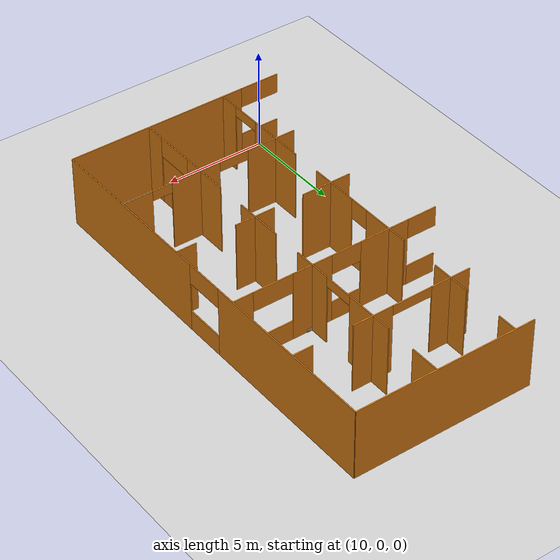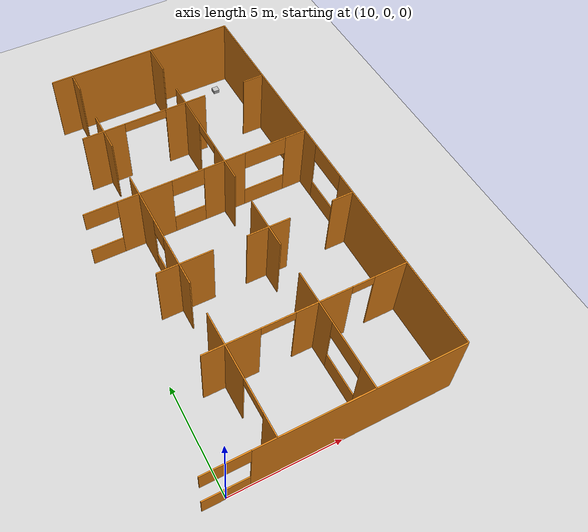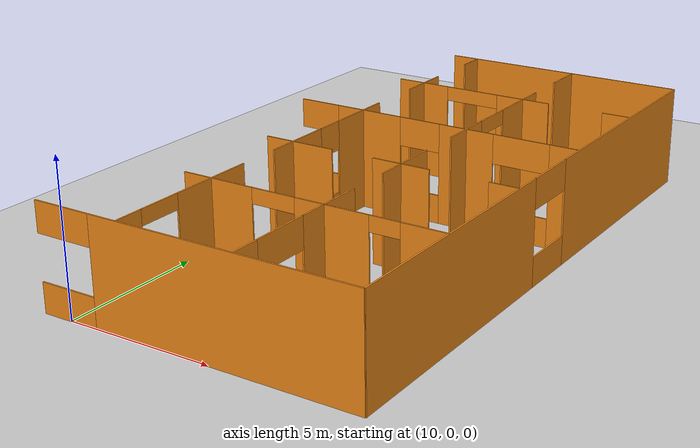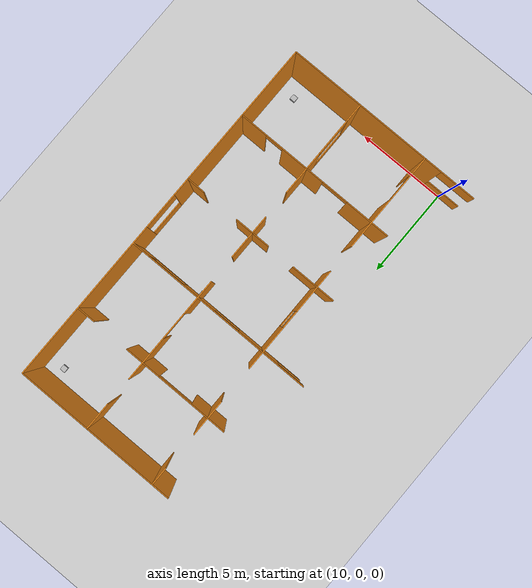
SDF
<sdf version="1.6">
 <world name="default">
  <include><uri>model://rirpc_box</uri><name>cube_4</name><pose>19.125 0.875 0 0 0 0</pose></include>
  <include><uri>model://rirpc_box</uri><name>cube_2</name><pose>16.125 11.875 0 0 0 0</pose></include>
  <include><uri>model://rirpc_box</uri><name>cube_0</name><pose>19.125 19.375 0 0 0 0</pose></include>
  <model name="window_11">
   <pose>10.25 12.0 1.75 0 0 -3.141592653589793</pose>
   <link name="top">
    <pose>0 0 1.25 0 0 0</pose>
    <inertial>
     <mass>1</mass>
     <inertia><ixx>0</ixx><ixy>0</ixy><ixz>0</ixz><iyy>0</iyy><iyz>0</iyz><izz>0</izz></inertia>
    </inertial>
    <collision name="collision"><geometry><box><size>1.5 0.05 1.0</size></box></geometry></collision>
    <visual name="visual">
     <geometry><box><size>1.5 0.05 1.0</size></box></geometry>
     <material>
      <script><name>Gazebo/Orange</name><uri>file://media/materials/scripts/gazebo.material</uri></script>
     </material>
    </visual>
   </link>
   <link name="bot">
    <pose>0 0 -1.25 0 0 0</pose>
    <inertial>
     <mass>1</mass>
     <inertia><ixx>0</ixx><ixy>0</ixy><ixz>0</ixz><iyy>0</iyy><iyz>0</iyz><izz>0</izz></inertia>
    </inertial>
    <collision name="collision"><geometry><box><size>1.5 0.05 1.0</size></box></geometry></collision>
    <visual name="visual">
     <geometry><box><size>1.5 0.05 1.0</size></box></geometry>
     <material>
      <script><name>Gazebo/Orange</name><uri>file://media/materials/scripts/gazebo.material</uri></script>
     </material>
    </visual>
   </link>
   <static>1</static>
  </model>
  <model name="window_10">
   <pose>18.0 12.0 1.75 0 0 -3.141592653589793</pose>
   <link name="top">
    <pose>0 0 1.25 0 0 0</pose>
    <inertial>
     <mass>1</mass>
     <inertia><ixx>0</ixx><ixy>0</ixy><ixz>0</ixz><iyy>0</iyy><iyz>0</iyz><izz>0</izz></inertia>
    </inertial>
    <collision name="collision"><geometry><box><size>2.0 0.05 1.0</size></box></geometry></collision>
    <visual name="visual">
     <geometry><box><size>2.0 0.05 1.0</size></box></geometry>
     <material>
      <script><name>Gazebo/Orange</name><uri>file://media/materials/scripts/gazebo.material</uri></script>
     </material>
    </visual>
   </link>
   <link name="bot">
    <pose>0 0 -1.25 0 0 0</pose>
    <inertial>
     <mass>1</mass>
     <inertia><ixx>0</ixx><ixy>0</ixy><ixz>0</ixz><iyy>0</iyy><iyz>0</iyz><izz>0</izz></inertia>
    </inertial>
    <collision name="collision"><geometry><box><size>2.0 0.05 1.0</size></box></geometry></collision>
    <visual name="visual">
     <geometry><box><size>2.0 0.05 1.0</size></box></geometry>
     <material>
      <script><name>Gazebo/Orange</name><uri>file://media/materials/scripts/gazebo.material</uri></script>
     </material>
    </visual>
   </link>
   <static>1</static>
  </model>
  <model name="window_9">
   <pose>14.25 12.0 1.75 0 0 -3.141592653589793</pose>
   <link name="top">
    <pose>0 0 1.25 0 0 0</pose>
    <inertial>
     <mass>1</mass>
     <inertia><ixx>0</ixx><ixy>0</ixy><ixz>0</ixz><iyy>0</iyy><iyz>0</iyz><izz>0</izz></inertia>
    </inertial>
    <collision name="collision"><geometry><box><size>1.5 0.05 1.0</size></box></geometry></collision>
    <visual name="visual">
     <geometry><box><size>1.5 0.05 1.0</size></box></geometry>
     <material>
      <script><name>Gazebo/Orange</name><uri>file://media/materials/scripts/gazebo.material</uri></script>
     </material>
    </visual>
   </link>
   <link name="bot">
    <pose>0 0 -1.25 0 0 0</pose>
    <inertial>
     <mass>1</mass>
     <inertia><ixx>0</ixx><ixy>0</ixy><ixz>0</ixz><iyy>0</iyy><iyz>0</iyz><izz>0</izz></inertia>
    </inertial>
    <collision name="collision"><geometry><box><size>1.5 0.05 1.0</size></box></geometry></collision>
    <visual name="visual">
     <geometry><box><size>1.5 0.05 1.0</size></box></geometry>
     <material>
      <script><name>Gazebo/Orange</name><uri>file://media/materials/scripts/gazebo.material</uri></script>
     </material>
    </visual>
   </link>
   <static>1</static>
  </model>
  <model name="window_8">
   <pose>16.0 2.0 1.75 0 0 1.5707963267948966</pose>
   <link name="top">
    <pose>0 0 1.25 0 0 0</pose>
    <inertial>
     <mass>1</mass>
     <inertia><ixx>0</ixx><ixy>0</ixy><ixz>0</ixz><iyy>0</iyy><iyz>0</iyz><izz>0</izz></inertia>
    </inertial>
    <collision name="collision"><geometry><box><size>2.0 0.05 1.0</size></box></geometry></collision>
    <visual name="visual">
     <geometry><box><size>2.0 0.05 1.0</size></box></geometry>
     <material>
      <script><name>Gazebo/Orange</name><uri>file://media/materials/scripts/gazebo.material</uri></script>
     </material>
    </visual>
   </link>
   <link name="bot">
    <pose>0 0 -1.25 0 0 0</pose>
    <inertial>
     <mass>1</mass>
     <inertia><ixx>0</ixx><ixy>0</ixy><ixz>0</ixz><iyy>0</iyy><iyz>0</iyz><izz>0</izz></inertia>
    </inertial>
    <collision name="collision"><geometry><box><size>2.0 0.05 1.0</size></box></geometry></collision>
    <visual name="visual">
     <geometry><box><size>2.0 0.05 1.0</size></box></geometry>
     <material>
      <script><name>Gazebo/Orange</name><uri>file://media/materials/scripts/gazebo.material</uri></script>
     </material>
    </visual>
   </link>
   <static>1</static>
  </model>
  <model name="window_7">
   <pose>12.0 10.0 1.75 0 0 1.5707963267948966</pose>
   <link name="top">
    <pose>0 0 1.25 0 0 0</pose>
    <inertial>
     <mass>1</mass>
     <inertia><ixx>0</ixx><ixy>0</ixy><ixz>0</ixz><iyy>0</iyy><iyz>0</iyz><izz>0</izz></inertia>
    </inertial>
    <collision name="collision"><geometry><box><size>1.0 0.05 1.0</size></box></geometry></collision>
    <visual name="visual">
     <geometry><box><size>1.0 0.05 1.0</size></box></geometry>
     <material>
      <script><name>Gazebo/Orange</name><uri>file://media/materials/scripts/gazebo.material</uri></script>
     </material>
    </visual>
   </link>
   <link name="bot">
    <pose>0 0 -1.25 0 0 0</pose>
    <inertial>
     <mass>1</mass>
     <inertia><ixx>0</ixx><ixy>0</ixy><ixz>0</ixz><iyy>0</iyy><iyz>0</iyz><izz>0</izz></inertia>
    </inertial>
    <collision name="collision"><geometry><box><size>1.0 0.05 1.0</size></box></geometry></collision>
    <visual name="visual">
     <geometry><box><size>1.0 0.05 1.0</size></box></geometry>
     <material>
      <script><name>Gazebo/Orange</name><uri>file://media/materials/scripts/gazebo.material</uri></script>
     </material>
    </visual>
   </link>
   <static>1</static>
  </model>
  <model name="window_2">
   <pose>10.0 0.0 1.75 0 0 -0.0</pose>
   <link name="top">
    <pose>0 0 1.25 0 0 0</pose>
    <inertial>
     <mass>1</mass>
     <inertia><ixx>0</ixx><ixy>0</ixy><ixz>0</ixz><iyy>0</iyy><iyz>0</iyz><izz>0</izz></inertia>
    </inertial>
    <collision name="collision"><geometry><box><size>2.0 0.05 1.0</size></box></geometry></collision>
    <visual name="visual">
     <geometry><box><size>2.0 0.05 1.0</size></box></geometry>
     <material>
      <script><name>Gazebo/Orange</name><uri>file://media/materials/scripts/gazebo.material</uri></script>
     </material>
    </visual>
   </link>
   <link name="bot">
    <pose>0 0 -1.25 0 0 0</pose>
    <inertial>
     <mass>1</mass>
     <inertia><ixx>0</ixx><ixy>0</ixy><ixz>0</ixz><iyy>0</iyy><iyz>0</iyz><izz>0</izz></inertia>
    </inertial>
    <collision name="collision"><geometry><box><size>2.0 0.05 1.0</size></box></geometry></collision>
    <visual name="visual">
     <geometry><box><size>2.0 0.05 1.0</size></box></geometry>
     <material>
      <script><name>Gazebo/Orange</name><uri>file://media/materials/scripts/gazebo.material</uri></script>
     </material>
    </visual>
   </link>
   <static>1</static>
  </model>
  <model name="window_1">
   <pose>20.0 10.0 1.75 0 0 1.5707963267948966</pose>
   <link name="top">
    <pose>0 0 1.25 0 0 0</pose>
    <inertial>
     <mass>1</mass>
     <inertia><ixx>0</ixx><ixy>0</ixy><ixz>0</ixz><iyy>0</iyy><iyz>0</iyz><izz>0</izz></inertia>
    </inertial>
    <collision name="collision"><geometry><box><size>2.0 0.05 1.0</size></box></geometry></collision>
    <visual name="visual">
     <geometry><box><size>2.0 0.05 1.0</size></box></geometry>
     <material>
      <script><name>Gazebo/Orange</name><uri>file://media/materials/scripts/gazebo.material</uri></script>
     </material>
    </visual>
   </link>
   <link name="bot">
    <pose>0 0 -1.25 0 0 0</pose>
    <inertial>
     <mass>1</mass>
     <inertia><ixx>0</ixx><ixy>0</ixy><ixz>0</ixz><iyy>0</iyy><iyz>0</iyz><izz>0</izz></inertia>
    </inertial>
    <collision name="collision"><geometry><box><size>2.0 0.05 1.0</size></box></geometry></collision>
    <visual name="visual">
     <geometry><box><size>2.0 0.05 1.0</size></box></geometry>
     <material>
      <script><name>Gazebo/Orange</name><uri>file://media/materials/scripts/gazebo.material</uri></script>
     </material>
    </visual>
   </link>
   <static>1</static>
  </model>
  <model name="box_67">
   <pose>18.0 4.0 3.25 0 0 -3.141592653589793</pose>
   <link name="link">
    <inertial>
     <mass>1</mass>
     <inertia><ixx>0</ixx><ixy>0</ixy><ixz>0</ixz><iyy>0</iyy><iyz>0</iyz><izz>0</izz></inertia>
    </inertial>
    <collision name="collision"><geometry><box><size>1.0 0.05 0.5</size></box></geometry></collision>
    <visual name="visual">
     <geometry><box><size>1.0 0.05 0.5</size></box></geometry>
     <material>
      <script><name>Gazebo/Orange</name><uri>file://media/materials/scripts/gazebo.material</uri></script>
     </material>
    </visual>
   </link>
   <static>1</static>
  </model>
  <model name="box_64">
   <pose>12.0 1.75 3.25 0 0 1.5707963267948966</pose>
   <link name="link">
    <inertial>
     <mass>1</mass>
     <inertia><ixx>0</ixx><ixy>0</ixy><ixz>0</ixz><iyy>0</iyy><iyz>0</iyz><izz>0</izz></inertia>
    </inertial>
    <collision name="collision"><geometry><box><size>1.5 0.05 0.5</size></box></geometry></collision>
    <visual name="visual">
     <geometry><box><size>1.5 0.05 0.5</size></box></geometry>
     <material>
      <script><name>Gazebo/Orange</name><uri>file://media/materials/scripts/gazebo.material</uri></script>
     </material>
    </visual>
   </link>
   <static>1</static>
  </model>
  <model name="box_63">
   <pose>14.25 4.0 3.25 0 0 -3.141592653589793</pose>
   <link name="link">
    <inertial>
     <mass>1</mass>
     <inertia><ixx>0</ixx><ixy>0</ixy><ixz>0</ixz><iyy>0</iyy><iyz>0</iyz><izz>0</izz></inertia>
    </inertial>
    <collision name="collision"><geometry><box><size>1.5 0.05 0.5</size></box></geometry></collision>
    <visual name="visual">
     <geometry><box><size>1.5 0.05 0.5</size></box></geometry>
     <material>
      <script><name>Gazebo/Orange</name><uri>file://media/materials/scripts/gazebo.material</uri></script>
     </material>
    </visual>
   </link>
   <static>1</static>
  </model>
  <model name="box_62">
   <pose>16.0 13.75 3.25 0 0 1.5707963267948966</pose>
   <link name="link">
    <inertial>
     <mass>1</mass>
     <inertia><ixx>0</ixx><ixy>0</ixy><ixz>0</ixz><iyy>0</iyy><iyz>0</iyz><izz>0</izz></inertia>
    </inertial>
    <collision name="collision"><geometry><box><size>1.5 0.05 0.5</size></box></geometry></collision>
    <visual name="visual">
     <geometry><box><size>1.5 0.05 0.5</size></box></geometry>
     <material>
      <script><name>Gazebo/Orange</name><uri>file://media/materials/scripts/gazebo.material</uri></script>
     </material>
    </visual>
   </link>
   <static>1</static>
  </model>
  <model name="box_61">
   <pose>14.0 16.0 3.25 0 0 -3.141592653589793</pose>
   <link name="link">
    <inertial>
     <mass>1</mass>
     <inertia><ixx>0</ixx><ixy>0</ixy><ixz>0</ixz><iyy>0</iyy><iyz>0</iyz><izz>0</izz></inertia>
    </inertial>
    <collision name="collision"><geometry><box><size>2.0 0.05 0.5</size></box></geometry></collision>
    <visual name="visual">
     <geometry><box><size>2.0 0.05 0.5</size></box></geometry>
     <material>
      <script><name>Gazebo/Orange</name><uri>file://media/materials/scripts/gazebo.material</uri></script>
     </material>
    </visual>
   </link>
   <static>1</static>
  </model>
  <model name="box_56">
   <pose>16.0 12.0 1.75 0 0 -3.141592653589793</pose>
   <link name="link">
    <inertial>
     <mass>1</mass>
     <inertia><ixx>0</ixx><ixy>0</ixy><ixz>0</ixz><iyy>0</iyy><iyz>0</iyz><izz>0</izz></inertia>
    </inertial>
    <collision name="collision"><geometry><box><size>2.0 0.05 3.5</size></box></geometry></collision>
    <visual name="visual">
     <geometry><box><size>2.0 0.05 3.5</size></box></geometry>
     <material>
      <script><name>Gazebo/Orange</name><uri>file://media/materials/scripts/gazebo.material</uri></script>
     </material>
    </visual>
   </link>
   <static>1</static>
  </model>
  <model name="box_49">
   <pose>19.25 4.0 1.75 0 0 -3.141592653589793</pose>
   <link name="link">
    <inertial>
     <mass>1</mass>
     <inertia><ixx>0</ixx><ixy>0</ixy><ixz>0</ixz><iyy>0</iyy><iyz>0</iyz><izz>0</izz></inertia>
    </inertial>
    <collision name="collision"><geometry><box><size>1.5 0.05 3.5</size></box></geometry></collision>
    <visual name="visual">
     <geometry><box><size>1.5 0.05 3.5</size></box></geometry>
     <material>
      <script><name>Gazebo/Orange</name><uri>file://media/materials/scripts/gazebo.material</uri></script>
     </material>
    </visual>
   </link>
   <static>1</static>
  </model>
  <model name="box_48">
   <pose>19.5 8.0 1.75 0 0 -3.141592653589793</pose>
   <link name="link">
    <inertial>
     <mass>1</mass>
     <inertia><ixx>0</ixx><ixy>0</ixy><ixz>0</ixz><iyy>0</iyy><iyz>0</iyz><izz>0</izz></inertia>
    </inertial>
    <collision name="collision"><geometry><box><size>1.0 0.05 3.5</size></box></geometry></collision>
    <visual name="visual">
     <geometry><box><size>1.0 0.05 3.5</size></box></geometry>
     <material>
      <script><name>Gazebo/Orange</name><uri>file://media/materials/scripts/gazebo.material</uri></script>
     </material>
    </visual>
   </link>
   <static>1</static>
  </model>
  <model name="box_47">
   <pose>19.5 12.0 1.75 0 0 -3.141592653589793</pose>
   <link name="link">
    <inertial>
     <mass>1</mass>
     <inertia><ixx>0</ixx><ixy>0</ixy><ixz>0</ixz><iyy>0</iyy><iyz>0</iyz><izz>0</izz></inertia>
    </inertial>
    <collision name="collision"><geometry><box><size>1.0 0.05 3.5</size></box></geometry></collision>
    <visual name="visual">
     <geometry><box><size>1.0 0.05 3.5</size></box></geometry>
     <material>
      <script><name>Gazebo/Orange</name><uri>file://media/materials/scripts/gazebo.material</uri></script>
     </material>
    </visual>
   </link>
   <static>1</static>
  </model>
  <model name="box_46">
   <pose>16.0 8.25 1.75 0 0 1.5707963267948966</pose>
   <link name="link">
    <inertial>
     <mass>1</mass>
     <inertia><ixx>0</ixx><ixy>0</ixy><ixz>0</ixz><iyy>0</iyy><iyz>0</iyz><izz>0</izz></inertia>
    </inertial>
    <collision name="collision"><geometry><box><size>2.5 0.05 3.5</size></box></geometry></collision>
    <visual name="visual">
     <geometry><box><size>2.5 0.05 3.5</size></box></geometry>
     <material>
      <script><name>Gazebo/Orange</name><uri>file://media/materials/scripts/gazebo.material</uri></script>
     </material>
    </visual>
   </link>
   <static>1</static>
  </model>
  <model name="box_45">
   <pose>16.0 8.0 1.75 0 0 -3.141592653589793</pose>
   <link name="link">
    <inertial>
     <mass>1</mass>
     <inertia><ixx>0</ixx><ixy>0</ixy><ixz>0</ixz><iyy>0</iyy><iyz>0</iyz><izz>0</izz></inertia>
    </inertial>
    <collision name="collision"><geometry><box><size>2.0 0.05 3.5</size></box></geometry></collision>
    <visual name="visual">
     <geometry><box><size>2.0 0.05 3.5</size></box></geometry>
     <material>
      <script><name>Gazebo/Orange</name><uri>file://media/materials/scripts/gazebo.material</uri></script>
     </material>
    </visual>
   </link>
   <static>1</static>
  </model>
  <model name="box_44">
   <pose>16.0 4.25 1.75 0 0 1.5707963267948966</pose>
   <link name="link">
    <inertial>
     <mass>1</mass>
     <inertia><ixx>0</ixx><ixy>0</ixy><ixz>0</ixz><iyy>0</iyy><iyz>0</iyz><izz>0</izz></inertia>
    </inertial>
    <collision name="collision"><geometry><box><size>2.5 0.05 3.5</size></box></geometry></collision>
    <visual name="visual">
     <geometry><box><size>2.5 0.05 3.5</size></box></geometry>
     <material>
      <script><name>Gazebo/Orange</name><uri>file://media/materials/scripts/gazebo.material</uri></script>
     </material>
    </visual>
   </link>
   <static>1</static>
  </model>
  <model name="box_43">
   <pose>16.25 4.0 1.75 0 0 -3.141592653589793</pose>
   <link name="link">
    <inertial>
     <mass>1</mass>
     <inertia><ixx>0</ixx><ixy>0</ixy><ixz>0</ixz><iyy>0</iyy><iyz>0</iyz><izz>0</izz></inertia>
    </inertial>
    <collision name="collision"><geometry><box><size>2.5 0.05 3.5</size></box></geometry></collision>
    <visual name="visual">
     <geometry><box><size>2.5 0.05 3.5</size></box></geometry>
     <material>
      <script><name>Gazebo/Orange</name><uri>file://media/materials/scripts/gazebo.material</uri></script>
     </material>
    </visual>
   </link>
   <static>1</static>
  </model>
  <model name="box_42">
   <pose>16.0 0.5 1.75 0 0 1.5707963267948966</pose>
   <link name="link">
    <inertial>
     <mass>1</mass>
     <inertia><ixx>0</ixx><ixy>0</ixy><ixz>0</ixz><iyy>0</iyy><iyz>0</iyz><izz>0</izz></inertia>
    </inertial>
    <collision name="collision"><geometry><box><size>1.0 0.05 3.5</size></box></geometry></collision>
    <visual name="visual">
     <geometry><box><size>1.0 0.05 3.5</size></box></geometry>
     <material>
      <script><name>Gazebo/Orange</name><uri>file://media/materials/scripts/gazebo.material</uri></script>
     </material>
    </visual>
   </link>
   <static>1</static>
  </model>
  <model name="box_41">
   <pose>12.0 0.5 1.75 0 0 1.5707963267948966</pose>
   <link name="link">
    <inertial>
     <mass>1</mass>
     <inertia><ixx>0</ixx><ixy>0</ixy><ixz>0</ixz><iyy>0</iyy><iyz>0</iyz><izz>0</izz></inertia>
    </inertial>
    <collision name="collision"><geometry><box><size>1.0 0.05 3.5</size></box></geometry></collision>
    <visual name="visual">
     <geometry><box><size>1.0 0.05 3.5</size></box></geometry>
     <material>
      <script><name>Gazebo/Orange</name><uri>file://media/materials/scripts/gazebo.material</uri></script>
     </material>
    </visual>
   </link>
   <static>1</static>
  </model>
  <model name="box_30">
   <pose>12.0 4.0 1.75 0 0 1.5707963267948966</pose>
   <link name="link">
    <inertial>
     <mass>1</mass>
     <inertia><ixx>0</ixx><ixy>0</ixy><ixz>0</ixz><iyy>0</iyy><iyz>0</iyz><izz>0</izz></inertia>
    </inertial>
    <collision name="collision"><geometry><box><size>3.0 0.05 3.5</size></box></geometry></collision>
    <visual name="visual">
     <geometry><box><size>3.0 0.05 3.5</size></box></geometry>
     <material>
      <script><name>Gazebo/Orange</name><uri>file://media/materials/scripts/gazebo.material</uri></script>
     </material>
    </visual>
   </link>
   <static>1</static>
  </model>
  <model name="box_29">
   <pose>12.25 4.0 1.75 0 0 -3.141592653589793</pose>
   <link name="link">
    <inertial>
     <mass>1</mass>
     <inertia><ixx>0</ixx><ixy>0</ixy><ixz>0</ixz><iyy>0</iyy><iyz>0</iyz><izz>0</izz></inertia>
    </inertial>
    <collision name="collision"><geometry><box><size>2.5 0.05 3.5</size></box></geometry></collision>
    <visual name="visual">
     <geometry><box><size>2.5 0.05 3.5</size></box></geometry>
     <material>
      <script><name>Gazebo/Orange</name><uri>file://media/materials/scripts/gazebo.material</uri></script>
     </material>
    </visual>
   </link>
   <static>1</static>
  </model>
  <model name="box_28">
   <pose>12.25 8.0 1.75 0 0 -3.141592653589793</pose>
   <link name="link">
    <inertial>
     <mass>1</mass>
     <inertia><ixx>0</ixx><ixy>0</ixy><ixz>0</ixz><iyy>0</iyy><iyz>0</iyz><izz>0</izz></inertia>
    </inertial>
    <collision name="collision"><geometry><box><size>2.5 0.05 3.5</size></box></geometry></collision>
    <visual name="visual">
     <geometry><box><size>2.5 0.05 3.5</size></box></geometry>
     <material>
      <script><name>Gazebo/Orange</name><uri>file://media/materials/scripts/gazebo.material</uri></script>
     </material>
    </visual>
   </link>
   <static>1</static>
  </model>
  <model name="box_27">
   <pose>12.0 8.25 1.75 0 0 1.5707963267948966</pose>
   <link name="link">
    <inertial>
     <mass>1</mass>
     <inertia><ixx>0</ixx><ixy>0</ixy><ixz>0</ixz><iyy>0</iyy><iyz>0</iyz><izz>0</izz></inertia>
    </inertial>
    <collision name="collision"><geometry><box><size>2.5 0.05 3.5</size></box></geometry></collision>
    <visual name="visual">
     <geometry><box><size>2.5 0.05 3.5</size></box></geometry>
     <material>
      <script><name>Gazebo/Orange</name><uri>file://media/materials/scripts/gazebo.material</uri></script>
     </material>
    </visual>
   </link>
   <static>1</static>
  </model>
  <model name="box_23">
   <pose>12.0 16.0 1.75 0 0 -3.141592653589793</pose>
   <link name="link">
    <inertial>
     <mass>1</mass>
     <inertia><ixx>0</ixx><ixy>0</ixy><ixz>0</ixz><iyy>0</iyy><iyz>0</iyz><izz>0</izz></inertia>
    </inertial>
    <collision name="collision"><geometry><box><size>2.0 0.05 3.5</size></box></geometry></collision>
    <visual name="visual">
     <geometry><box><size>2.0 0.05 3.5</size></box></geometry>
     <material>
      <script><name>Gazebo/Orange</name><uri>file://media/materials/scripts/gazebo.material</uri></script>
     </material>
    </visual>
   </link>
   <static>1</static>
  </model>
  <model name="box_22">
   <pose>12.25 12.0 1.75 0 0 -3.141592653589793</pose>
   <link name="link">
    <inertial>
     <mass>1</mass>
     <inertia><ixx>0</ixx><ixy>0</ixy><ixz>0</ixz><iyy>0</iyy><iyz>0</iyz><izz>0</izz></inertia>
    </inertial>
    <collision name="collision"><geometry><box><size>2.5 0.05 3.5</size></box></geometry></collision>
    <visual name="visual">
     <geometry><box><size>2.5 0.05 3.5</size></box></geometry>
     <material>
      <script><name>Gazebo/Orange</name><uri>file://media/materials/scripts/gazebo.material</uri></script>
     </material>
    </visual>
   </link>
   <static>1</static>
  </model>
  <model name="box_21">
   <pose>16.0 12.0 1.75 0 0 1.5707963267948966</pose>
   <link name="link">
    <inertial>
     <mass>1</mass>
     <inertia><ixx>0</ixx><ixy>0</ixy><ixz>0</ixz><iyy>0</iyy><iyz>0</iyz><izz>0</izz></inertia>
    </inertial>
    <collision name="collision"><geometry><box><size>2.0 0.05 3.5</size></box></geometry></collision>
    <visual name="visual">
     <geometry><box><size>2.0 0.05 3.5</size></box></geometry>
     <material>
      <script><name>Gazebo/Orange</name><uri>file://media/materials/scripts/gazebo.material</uri></script>
     </material>
    </visual>
   </link>
   <static>1</static>
  </model>
  <model name="box_20">
   <pose>16.0 15.75 1.75 0 0 1.5707963267948966</pose>
   <link name="link">
    <inertial>
     <mass>1</mass>
     <inertia><ixx>0</ixx><ixy>0</ixy><ixz>0</ixz><iyy>0</iyy><iyz>0</iyz><izz>0</izz></inertia>
    </inertial>
    <collision name="collision"><geometry><box><size>2.5 0.05 3.5</size></box></geometry></collision>
    <visual name="visual">
     <geometry><box><size>2.5 0.05 3.5</size></box></geometry>
     <material>
      <script><name>Gazebo/Orange</name><uri>file://media/materials/scripts/gazebo.material</uri></script>
     </material>
    </visual>
   </link>
   <static>1</static>
  </model>
  <model name="box_19">
   <pose>16.0 16.0 1.75 0 0 -3.141592653589793</pose>
   <link name="link">
    <inertial>
     <mass>1</mass>
     <inertia><ixx>0</ixx><ixy>0</ixy><ixz>0</ixz><iyy>0</iyy><iyz>0</iyz><izz>0</izz></inertia>
    </inertial>
    <collision name="collision"><geometry><box><size>2.0 0.05 3.5</size></box></geometry></collision>
    <visual name="visual">
     <geometry><box><size>2.0 0.05 3.5</size></box></geometry>
     <material>
      <script><name>Gazebo/Orange</name><uri>file://media/materials/scripts/gazebo.material</uri></script>
     </material>
    </visual>
   </link>
   <static>1</static>
  </model>
  <model name="box_18">
   <pose>19.5 16.0 1.75 0 0 -0.0</pose>
   <link name="link">
    <inertial>
     <mass>1</mass>
     <inertia><ixx>0</ixx><ixy>0</ixy><ixz>0</ixz><iyy>0</iyy><iyz>0</iyz><izz>0</izz></inertia>
    </inertial>
    <collision name="collision"><geometry><box><size>1.0 0.05 3.5</size></box></geometry></collision>
    <visual name="visual">
     <geometry><box><size>1.0 0.05 3.5</size></box></geometry>
     <material>
      <script><name>Gazebo/Orange</name><uri>file://media/materials/scripts/gazebo.material</uri></script>
     </material>
    </visual>
   </link>
   <static>1</static>
  </model>
  <model name="box_17">
   <pose>16.0 19.25 1.75 0 0 1.5707963267948966</pose>
   <link name="link">
    <inertial>
     <mass>1</mass>
     <inertia><ixx>0</ixx><ixy>0</ixy><ixz>0</ixz><iyy>0</iyy><iyz>0</iyz><izz>0</izz></inertia>
    </inertial>
    <collision name="collision"><geometry><box><size>1.5 0.05 3.5</size></box></geometry></collision>
    <visual name="visual">
     <geometry><box><size>1.5 0.05 3.5</size></box></geometry>
     <material>
      <script><name>Gazebo/Orange</name><uri>file://media/materials/scripts/gazebo.material</uri></script>
     </material>
    </visual>
   </link>
   <static>1</static>
  </model>
  <model name="box_15">
   <pose>12.0 19.5 1.75 0 0 1.5707963267948966</pose>
   <link name="link">
    <inertial>
     <mass>1</mass>
     <inertia><ixx>0</ixx><ixy>0</ixy><ixz>0</ixz><iyy>0</iyy><iyz>0</iyz><izz>0</izz></inertia>
    </inertial>
    <collision name="collision"><geometry><box><size>1.0 0.05 3.5</size></box></geometry></collision>
    <visual name="visual">
     <geometry><box><size>1.0 0.05 3.5</size></box></geometry>
     <material>
      <script><name>Gazebo/Orange</name><uri>file://media/materials/scripts/gazebo.material</uri></script>
     </material>
    </visual>
   </link>
   <static>1</static>
  </model>
  <model name="box_14">
   <pose>12.0 16.0 1.75 0 0 -1.5707963267948966</pose>
   <link name="link">
    <inertial>
     <mass>1</mass>
     <inertia><ixx>0</ixx><ixy>0</ixy><ixz>0</ixz><iyy>0</iyy><iyz>0</iyz><izz>0</izz></inertia>
    </inertial>
    <collision name="collision"><geometry><box><size>2.0 0.05 3.5</size></box></geometry></collision>
    <visual name="visual">
     <geometry><box><size>2.0 0.05 3.5</size></box></geometry>
     <material>
      <script><name>Gazebo/Orange</name><uri>file://media/materials/scripts/gazebo.material</uri></script>
     </material>
    </visual>
   </link>
   <static>1</static>
  </model>
  <model name="box_13">
   <pose>12.0 11.75 1.75 0 0 -1.5707963267948966</pose>
   <link name="link">
    <inertial>
     <mass>1</mass>
     <inertia><ixx>0</ixx><ixy>0</ixy><ixz>0</ixz><iyy>0</iyy><iyz>0</iyz><izz>0</izz></inertia>
    </inertial>
    <collision name="collision"><geometry><box><size>2.5 0.05 3.5</size></box></geometry></collision>
    <visual name="visual">
     <geometry><box><size>2.5 0.05 3.5</size></box></geometry>
     <material>
      <script><name>Gazebo/Orange</name><uri>file://media/materials/scripts/gazebo.material</uri></script>
     </material>
    </visual>
   </link>
   <static>1</static>
  </model>
  <model name="box_8">
   <pose>20.0 15.5 1.75 0 0 1.5707963267948966</pose>
   <link name="link">
    <inertial>
     <mass>1</mass>
     <inertia><ixx>0</ixx><ixy>0</ixy><ixz>0</ixz><iyy>0</iyy><iyz>0</iyz><izz>0</izz></inertia>
    </inertial>
    <collision name="collision"><geometry><box><size>9.0 0.05 3.5</size></box></geometry></collision>
    <visual name="visual">
     <geometry><box><size>9.0 0.05 3.5</size></box></geometry>
     <material>
      <script><name>Gazebo/Orange</name><uri>file://media/materials/scripts/gazebo.material</uri></script>
     </material>
    </visual>
   </link>
   <static>1</static>
  </model>
  <model name="box_7">
   <pose>15.5 20.0 1.75 0 0 -0.0</pose>
   <link name="link">
    <inertial>
     <mass>1</mass>
     <inertia><ixx>0</ixx><ixy>0</ixy><ixz>0</ixz><iyy>0</iyy><iyz>0</iyz><izz>0</izz></inertia>
    </inertial>
    <collision name="collision"><geometry><box><size>9.0 0.05 3.5</size></box></geometry></collision>
    <visual name="visual">
     <geometry><box><size>9.0 0.05 3.5</size></box></geometry>
     <material>
      <script><name>Gazebo/Orange</name><uri>file://media/materials/scripts/gazebo.material</uri></script>
     </material>
    </visual>
   </link>
   <static>1</static>
  </model>
  <model name="box_5">
   <pose>20.0 4.5 1.75 0 0 -1.5707963267948966</pose>
   <link name="link">
    <inertial>
     <mass>1</mass>
     <inertia><ixx>0</ixx><ixy>0</ixy><ixz>0</ixz><iyy>0</iyy><iyz>0</iyz><izz>0</izz></inertia>
    </inertial>
    <collision name="collision"><geometry><box><size>9.0 0.05 3.5</size></box></geometry></collision>
    <visual name="visual">
     <geometry><box><size>9.0 0.05 3.5</size></box></geometry>
     <material>
      <script><name>Gazebo/Orange</name><uri>file://media/materials/scripts/gazebo.material</uri></script>
     </material>
    </visual>
   </link>
   <static>1</static>
  </model>
  <model name="box_4">
   <pose>15.5 0.0 1.75 0 0 -0.0</pose>
   <link name="link">
    <inertial>
     <mass>1</mass>
     <inertia><ixx>0</ixx><ixy>0</ixy><ixz>0</ixz><iyy>0</iyy><iyz>0</iyz><izz>0</izz></inertia>
    </inertial>
    <collision name="collision"><geometry><box><size>9.0 0.05 3.5</size></box></geometry></collision>
    <visual name="visual">
     <geometry><box><size>9.0 0.05 3.5</size></box></geometry>
     <material>
      <script><name>Gazebo/Orange</name><uri>file://media/materials/scripts/gazebo.material</uri></script>
     </material>
    </visual>
   </link>
   <static>1</static>
  </model>
  <model name="ground_plane">
   <static>1</static>
   <link name="link">
    <collision name="collision">
     <geometry><plane><normal>0 0 1</normal><size>100 100</size></plane></geometry>
     <surface>
      <contact><collide_bitmask>65535</collide_bitmask></contact>
      <friction><ode><mu>100</mu><mu2>50</mu2></ode></friction>
     </surface>
    </collision>
    <visual name="visual">
     <cast_shadows>0</cast_shadows>
     <geometry><plane><normal>0 0 1</normal><size>100 100</size></plane></geometry>
     <material>
      <script><uri>file://media/materials/scripts/gazebo.material</uri><name>Gazebo/Grey</name></script>
     </material>
    </visual>
   </link>
  </model>
 </world>
</sdf>
